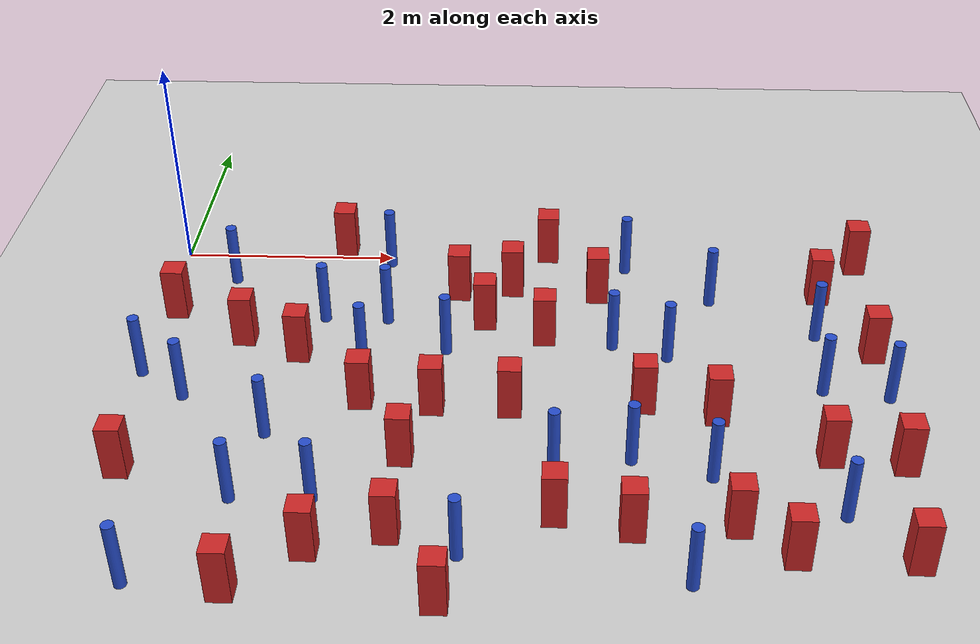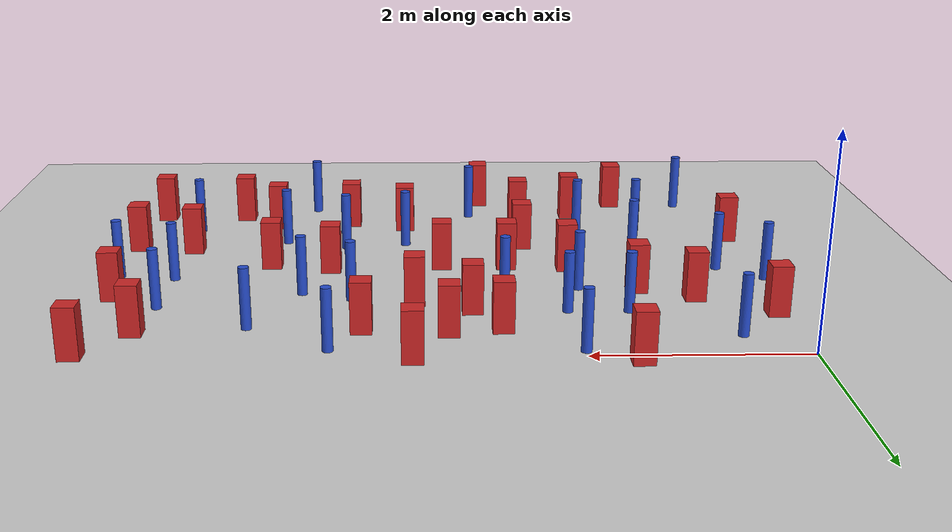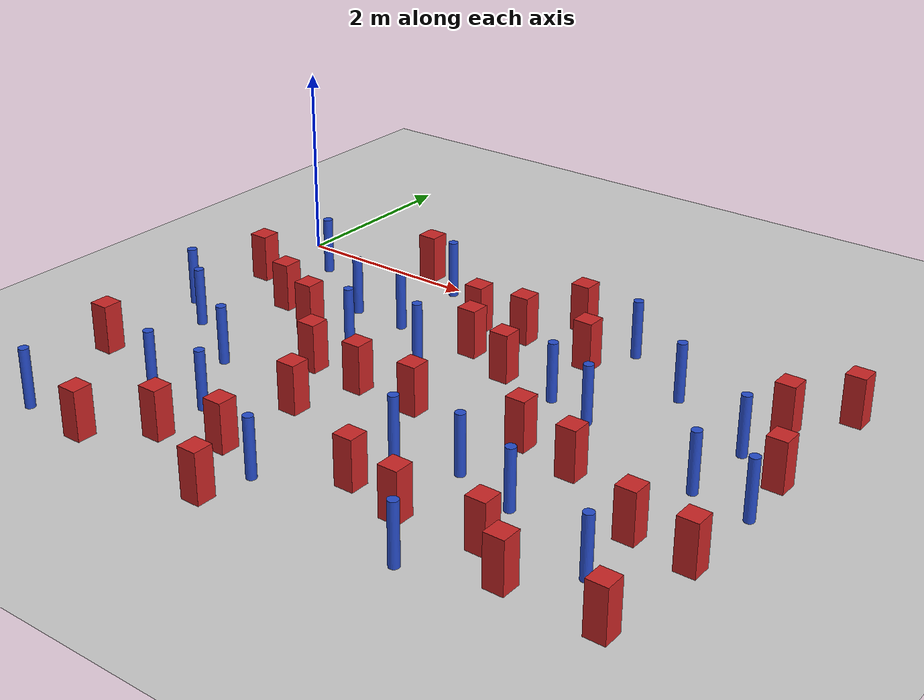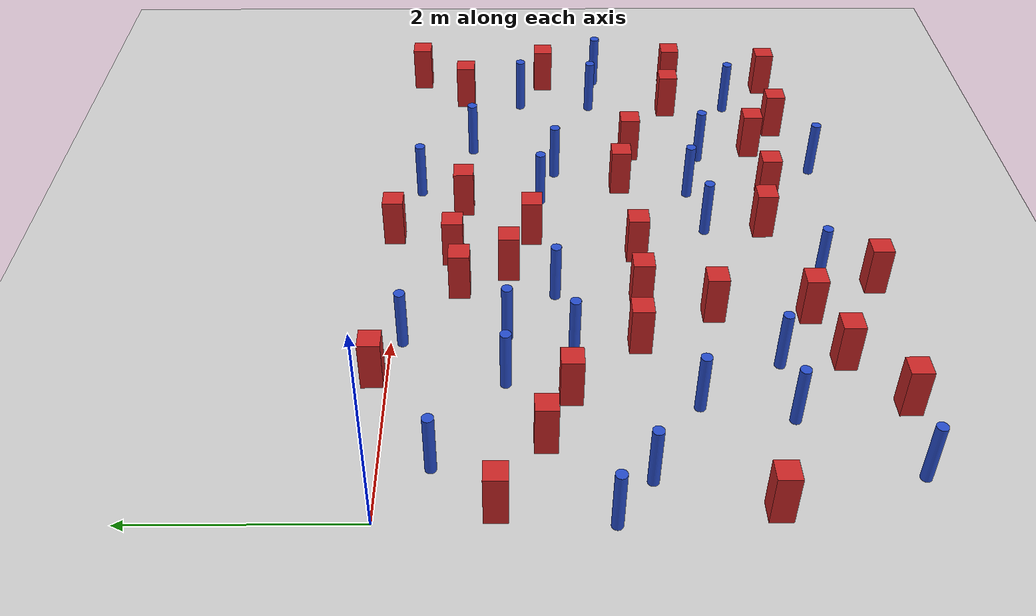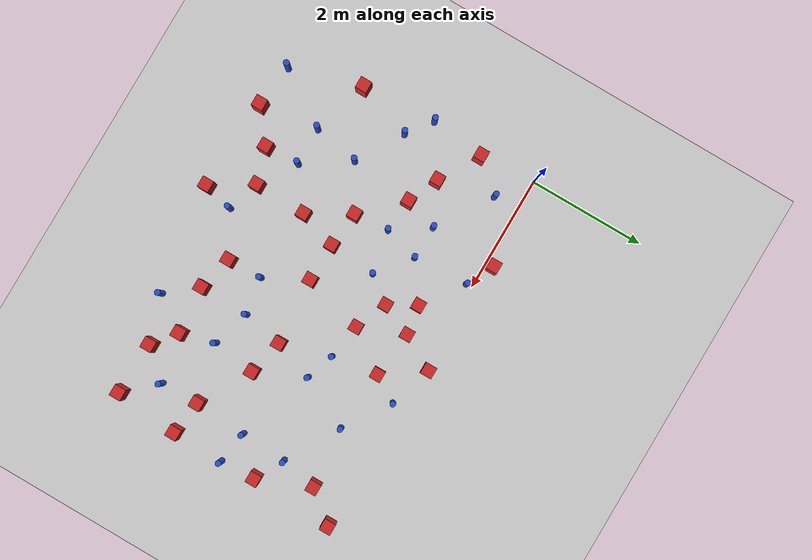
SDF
<sdf version="1.6">
 <world name="default">
  <model name="ground_plane">
   <static>1</static>
   <link name="link">
    <collision name="collision">
     <geometry><plane><normal>0 0 1</normal><size>100 100</size></plane></geometry>
     <surface><friction><ode><mu>100</mu><mu2>50</mu2></ode></friction></surface>
    </collision>
    <visual name="visual">
     <cast_shadows>0</cast_shadows>
     <geometry><plane><normal>0 0 1</normal><size>100 100</size></plane></geometry>
     <material>
      <ambient>1.0 1.0 1.0 1.0</ambient>
      <diffuse>0.8 0.8 0.8 1.0</diffuse>
      <specular>0.01 0.01 0.01 1.000000</specular>
     </material>
    </visual>
   </link>
  </model>
  <model name="NamedLocations">
   <static>true</static>
   <link name="DefaultStart"><pose>8.5 0 0 0 0 3.14</pose></link>
  </model>
  <model name="pole_obstacle1">
   <static>true</static>
   <pose>4.24833573397 -2.92627060806 2.88873142074e-08 -9.90536690245e-09 4.6021994898e-07 -1.20965994966e-07</pose>
   <link name="link">
    <pose>0 0 0.3 0 -0 0</pose>
    <inertial>
     <mass>1</mass>
     <inertia><ixx>0.145833</ixx><ixy>0</ixy><ixz>0</ixz><iyy>0.145833</iyy><iyz>0</iyz><izz>0.125</izz></inertia>
    </inertial>
    <collision name="collision">
     <geometry><cylinder><radius>0.05</radius><length>.6</length></cylinder></geometry>
    </collision>
    <visual name="visual">
     <geometry><cylinder><radius>0.05</radius><length>.6</length></cylinder></geometry>
     <material>
      <script><name>Gazebo/Blue</name><uri>file://media/materials/scripts/gazebo.material</uri></script>
     </material>
    </visual>
   </link>
  </model>
  <model name="square_post_obstacle1">
   <static>true</static>
   <pose>1.20547896843 -4.45564103918 8.22691968438e-08 7.2212513382e-06 -7.54495500217e-07 2.29674213826e-05</pose>
   <link name="link">
    <pose>0 0 0.25 0 -0 0</pose>
    <inertial>
     <mass>100</mass>
     <inertia>
      <ixx>0.166667</ixx>
      <ixy>0</ixy>
      <ixz>0</ixz>
      <iyy>0.166667</iyy>
      <iyz>0</iyz>
      <izz>0.166667</izz>
     </inertia>
    </inertial>
    <collision name="collision"><geometry><box><size>.2 .2 .5</size></box></geometry></collision>
    <visual name="visual">
     <geometry><box><size>.2 .2 .5</size></box></geometry>
     <material>
      <script><name>Gazebo/Red</name><uri>file://media/materials/scripts/gazebo.material</uri></script>
     </material>
    </visual>
   </link>
  </model>
  <model name="pole_obstacle10">
   <static>true</static>
   <pose>4.12650036827 -1.38472819704 2.88873142074e-08 -9.90536689445e-09 4.60219948999e-07 -1.20965994956e-07</pose>
   <link name="link">
    <pose>0 0 0.3 0 -0 0</pose>
    <inertial>
     <mass>1</mass>
     <inertia><ixx>0.145833</ixx><ixy>0</ixy><ixz>0</ixz><iyy>0.145833</iyy><iyz>0</iyz><izz>0.125</izz></inertia>
    </inertial>
    <collision name="collision">
     <geometry><cylinder><radius>0.05</radius><length>.6</length></cylinder></geometry>
    </collision>
    <visual name="visual">
     <geometry><cylinder><radius>0.05</radius><length>.6</length></cylinder></geometry>
     <material>
      <script><name>Gazebo/Blue</name><uri>file://media/materials/scripts/gazebo.material</uri></script>
     </material>
    </visual>
   </link>
  </model>
  <model name="pole_obstacle15">
   <static>true</static>
   <pose>4.61216319745 -1.54552737831 2.88873142074e-08 -9.90536689445e-09 4.60219948999e-07 -1.20965994956e-07</pose>
   <link name="link">
    <pose>0 0 0.3 0 -0 0</pose>
    <inertial>
     <mass>1</mass>
     <inertia><ixx>0.145833</ixx><ixy>0</ixy><ixz>0</ixz><iyy>0.145833</iyy><iyz>0</iyz><izz>0.125</izz></inertia>
    </inertial>
    <collision name="collision">
     <geometry><cylinder><radius>0.05</radius><length>.6</length></cylinder></geometry>
    </collision>
    <visual name="visual">
     <geometry><cylinder><radius>0.05</radius><length>.6</length></cylinder></geometry>
     <material>
      <script><name>Gazebo/Blue</name><uri>file://media/materials/scripts/gazebo.material</uri></script>
     </material>
    </visual>
   </link>
  </model>
  <model name="pole_obstacle22">
   <static>true</static>
   <pose>1.71378519307 -3.45411010123 2.88873142074e-08 -9.90536689791e-09 4.6021994899e-07 -1.20965994959e-07</pose>
   <link name="link">
    <pose>0 0 0.3 0 -0 0</pose>
    <inertial>
     <mass>1</mass>
     <inertia><ixx>0.145833</ixx><ixy>0</ixy><ixz>0</ixz><iyy>0.145833</iyy><iyz>0</iyz><izz>0.125</izz></inertia>
    </inertial>
    <collision name="collision">
     <geometry><cylinder><radius>0.05</radius><length>.6</length></cylinder></geometry>
    </collision>
    <visual name="visual">
     <geometry><cylinder><radius>0.05</radius><length>.6</length></cylinder></geometry>
     <material>
      <script><name>Gazebo/Blue</name><uri>file://media/materials/scripts/gazebo.material</uri></script>
     </material>
    </visual>
   </link>
  </model>
  <model name="square_post_obstacle20">
   <static>true</static>
   <pose>2.37018745026 -2.94971573956 8.22691968438e-08 7.2212513382e-06 -7.54495500217e-07 2.29674213826e-05</pose>
   <link name="link">
    <pose>0 0 0.25 0 -0 0</pose>
    <inertial>
     <mass>100</mass>
     <inertia>
      <ixx>0.166667</ixx>
      <ixy>0</ixy>
      <ixz>0</ixz>
      <iyy>0.166667</iyy>
      <iyz>0</iyz>
      <izz>0.166667</izz>
     </inertia>
    </inertial>
    <collision name="collision"><geometry><box><size>.2 .2 .5</size></box></geometry></collision>
    <visual name="visual">
     <geometry><box><size>.2 .2 .5</size></box></geometry>
     <material>
      <script><name>Gazebo/Red</name><uri>file://media/materials/scripts/gazebo.material</uri></script>
     </material>
    </visual>
   </link>
  </model>
  <model name="pole_obstacle29">
   <static>true</static>
   <pose>6.49619927924 -2.06322555982 2.88873142074e-08 -9.90536690245e-09 4.6021994898e-07 -1.20965994966e-07</pose>
   <link name="link">
    <pose>0 0 0.3 0 -0 0</pose>
    <inertial>
     <mass>1</mass>
     <inertia><ixx>0.145833</ixx><ixy>0</ixy><ixz>0</ixz><iyy>0.145833</iyy><iyz>0</iyz><izz>0.125</izz></inertia>
    </inertial>
    <collision name="collision">
     <geometry><cylinder><radius>0.05</radius><length>.6</length></cylinder></geometry>
    </collision>
    <visual name="visual">
     <geometry><cylinder><radius>0.05</radius><length>.6</length></cylinder></geometry>
     <material>
      <script><name>Gazebo/Blue</name><uri>file://media/materials/scripts/gazebo.material</uri></script>
     </material>
    </visual>
   </link>
  </model>
  <model name="square_post_obstacle23">
   <static>true</static>
   <pose>4.22750566799 -3.75409815203 8.22691968438e-08 7.2212513382e-06 -7.54495500217e-07 2.29674213826e-05</pose>
   <link name="link">
    <pose>0 0 0.25 0 -0 0</pose>
    <inertial>
     <mass>100</mass>
     <inertia>
      <ixx>0.166667</ixx>
      <ixy>0</ixy>
      <ixz>0</ixz>
      <iyy>0.166667</iyy>
      <iyz>0</iyz>
      <izz>0.166667</izz>
     </inertia>
    </inertial>
    <collision name="collision"><geometry><box><size>.2 .2 .5</size></box></geometry></collision>
    <visual name="visual">
     <geometry><box><size>.2 .2 .5</size></box></geometry>
     <material>
      <script><name>Gazebo/Red</name><uri>file://media/materials/scripts/gazebo.material</uri></script>
     </material>
    </visual>
   </link>
  </model>
  <model name="pole_obstacle42">
   <static>true</static>
   <pose>1.90044574133 -1.6433815035 2.88873142074e-08 -9.90536689672e-09 4.60219948993e-07 -1.20965994959e-07</pose>
   <link name="link">
    <pose>0 0 0.3 0 -0 0</pose>
    <inertial>
     <mass>1</mass>
     <inertia><ixx>0.145833</ixx><ixy>0</ixy><ixz>0</ixz><iyy>0.145833</iyy><iyz>0</iyz><izz>0.125</izz></inertia>
    </inertial>
    <collision name="collision">
     <geometry><cylinder><radius>0.05</radius><length>.6</length></cylinder></geometry>
    </collision>
    <visual name="visual">
     <geometry><cylinder><radius>0.05</radius><length>.6</length></cylinder></geometry>
     <material>
      <script><name>Gazebo/Blue</name><uri>file://media/materials/scripts/gazebo.material</uri></script>
     </material>
    </visual>
   </link>
  </model>
  <model name="square_post_obstacle32">
   <static>true</static>
   <pose>4.98477406157 -2.3625889347 8.22691968438e-08 7.2212513382e-06 -7.54495500217e-07 2.29674213826e-05</pose>
   <link name="link">
    <pose>0 0 0.25 0 -0 0</pose>
    <inertial>
     <mass>100</mass>
     <inertia>
      <ixx>0.166667</ixx>
      <ixy>0</ixy>
      <ixz>0</ixz>
      <iyy>0.166667</iyy>
      <iyz>0</iyz>
      <izz>0.166667</izz>
     </inertia>
    </inertial>
    <collision name="collision"><geometry><box><size>.2 .2 .5</size></box></geometry></collision>
    <visual name="visual">
     <geometry><box><size>.2 .2 .5</size></box></geometry>
     <material>
      <script><name>Gazebo/Red</name><uri>file://media/materials/scripts/gazebo.material</uri></script>
     </material>
    </visual>
   </link>
  </model>
  <model name="square_post_obstacle33">
   <static>true</static>
   <pose>2.77304114887 -4.52940186468 8.22691968438e-08 7.22125133819e-06 -7.54495500217e-07 2.29674213826e-05</pose>
   <link name="link">
    <pose>0 0 0.25 0 -0 0</pose>
    <inertial>
     <mass>100</mass>
     <inertia>
      <ixx>0.166667</ixx>
      <ixy>0</ixy>
      <ixz>0</ixz>
      <iyy>0.166667</iyy>
      <iyz>0</iyz>
      <izz>0.166667</izz>
     </inertia>
    </inertial>
    <collision name="collision"><geometry><box><size>.2 .2 .5</size></box></geometry></collision>
    <visual name="visual">
     <geometry><box><size>.2 .2 .5</size></box></geometry>
     <material>
      <script><name>Gazebo/Red</name><uri>file://media/materials/scripts/gazebo.material</uri></script>
     </material>
    </visual>
   </link>
  </model>
  <model name="pole_obstacle47">
   <static>true</static>
   <pose>5.05046700179 -0.671111797282 2.88873142074e-08 -9.90536689837e-09 4.60219948989e-07 -1.2096599496e-07</pose>
   <link name="link">
    <pose>0 0 0.3 0 -0 0</pose>
    <inertial>
     <mass>1</mass>
     <inertia><ixx>0.145833</ixx><ixy>0</ixy><ixz>0</ixz><iyy>0.145833</iyy><iyz>0</iyz><izz>0.125</izz></inertia>
    </inertial>
    <collision name="collision">
     <geometry><cylinder><radius>0.05</radius><length>.6</length></cylinder></geometry>
    </collision>
    <visual name="visual">
     <geometry><cylinder><radius>0.05</radius><length>.6</length></cylinder></geometry>
     <material>
      <script><name>Gazebo/Blue</name><uri>file://media/materials/scripts/gazebo.material</uri></script>
     </material>
    </visual>
   </link>
  </model>
  <model name="pole_obstacle59">
   <static>true</static>
   <pose>0.444974564538 -4.39592673974 2.88873142074e-08 -9.90536689683e-09 4.60219948993e-07 -1.20965994957e-07</pose>
   <link name="link">
    <pose>0 0 0.3 0 -0 0</pose>
    <inertial>
     <mass>1</mass>
     <inertia><ixx>0.145833</ixx><ixy>0</ixy><ixz>0</ixz><iyy>0.145833</iyy><iyz>0</iyz><izz>0.125</izz></inertia>
    </inertial>
    <collision name="collision">
     <geometry><cylinder><radius>0.05</radius><length>.6</length></cylinder></geometry>
    </collision>
    <visual name="visual">
     <geometry><cylinder><radius>0.05</radius><length>.6</length></cylinder></geometry>
     <material>
      <script><name>Gazebo/Blue</name><uri>file://media/materials/scripts/gazebo.material</uri></script>
     </material>
    </visual>
   </link>
  </model>
  <model name="square_post_obstacle46">
   <static>true</static>
   <pose>1.54921073364 0.12284174151 8.22691968438e-08 7.2212513382e-06 -7.54495500217e-07 2.29674213826e-05</pose>
   <link name="link">
    <pose>0 0 0.25 0 -0 0</pose>
    <inertial>
     <mass>100</mass>
     <inertia>
      <ixx>0.166667</ixx>
      <ixy>0</ixy>
      <ixz>0</ixz>
      <iyy>0.166667</iyy>
      <iyz>0</iyz>
      <izz>0.166667</izz>
     </inertia>
    </inertial>
    <collision name="collision"><geometry><box><size>.2 .2 .5</size></box></geometry></collision>
    <visual name="visual">
     <geometry><box><size>.2 .2 .5</size></box></geometry>
     <material>
      <script><name>Gazebo/Red</name><uri>file://media/materials/scripts/gazebo.material</uri></script>
     </material>
    </visual>
   </link>
  </model>
  <model name="square_post_obstacle48">
   <static>true</static>
   <pose>6.44008663165 -1.45887982451 8.22691968438e-08 7.2212513382e-06 -7.54495500217e-07 2.29674213826e-05</pose>
   <link name="link">
    <pose>0 0 0.25 0 -0 0</pose>
    <inertial>
     <mass>100</mass>
     <inertia>
      <ixx>0.166667</ixx>
      <ixy>0</ixy>
      <ixz>0</ixz>
      <iyy>0.166667</iyy>
      <iyz>0</iyz>
      <izz>0.166667</izz>
     </inertia>
    </inertial>
    <collision name="collision"><geometry><box><size>.2 .2 .5</size></box></geometry></collision>
    <visual name="visual">
     <geometry><box><size>.2 .2 .5</size></box></geometry>
     <material>
      <script><name>Gazebo/Red</name><uri>file://media/materials/scripts/gazebo.material</uri></script>
     </material>
    </visual>
   </link>
  </model>
  <model name="square_post_obstacle54">
   <static>true</static>
   <pose>3.51488883954 -1.28814952726 8.22691968438e-08 7.2212513382e-06 -7.54495500217e-07 2.29674213826e-05</pose>
   <link name="link">
    <pose>0 0 0.25 0 -0 0</pose>
    <inertial>
     <mass>100</mass>
     <inertia>
      <ixx>0.166667</ixx>
      <ixy>0</ixy>
      <ixz>0</ixz>
      <iyy>0.166667</iyy>
      <iyz>0</iyz>
      <izz>0.166667</izz>
     </inertia>
    </inertial>
    <collision name="collision"><geometry><box><size>.2 .2 .5</size></box></geometry></collision>
    <visual name="visual">
     <geometry><box><size>.2 .2 .5</size></box></geometry>
     <material>
      <script><name>Gazebo/Red</name><uri>file://media/materials/scripts/gazebo.material</uri></script>
     </material>
    </visual>
   </link>
  </model>
  <model name="square_post_obstacle62">
   <static>true</static>
   <pose>2.96860081308 -1.06024419381 8.22691968438e-08 7.2212513382e-06 -7.54495500217e-07 2.29674213826e-05</pose>
   <link name="link">
    <pose>0 0 0.25 0 -0 0</pose>
    <inertial>
     <mass>100</mass>
     <inertia>
      <ixx>0.166667</ixx>
      <ixy>0</ixy>
      <ixz>0</ixz>
      <iyy>0.166667</iyy>
      <iyz>0</iyz>
      <izz>0.166667</izz>
     </inertia>
    </inertial>
    <collision name="collision"><geometry><box><size>.2 .2 .5</size></box></geometry></collision>
    <visual name="visual">
     <geometry><box><size>.2 .2 .5</size></box></geometry>
     <material>
      <script><name>Gazebo/Red</name><uri>file://media/materials/scripts/gazebo.material</uri></script>
     </material>
    </visual>
   </link>
  </model>
  <model name="square_post_obstacle64">
   <static>true</static>
   <pose>5.86610958267 -2.8599877468 8.22691968438e-08 7.2212513382e-06 -7.54495500217e-07 2.29674213826e-05</pose>
   <link name="link">
    <pose>0 0 0.25 0 -0 0</pose>
    <inertial>
     <mass>100</mass>
     <inertia>
      <ixx>0.166667</ixx>
      <ixy>0</ixy>
      <ixz>0</ixz>
      <iyy>0.166667</iyy>
      <iyz>0</iyz>
      <izz>0.166667</izz>
     </inertia>
    </inertial>
    <collision name="collision"><geometry><box><size>.2 .2 .5</size></box></geometry></collision>
    <visual name="visual">
     <geometry><box><size>.2 .2 .5</size></box></geometry>
     <material>
      <script><name>Gazebo/Red</name><uri>file://media/materials/scripts/gazebo.material</uri></script>
     </material>
    </visual>
   </link>
  </model>
  <model name="pole_obstacle81">
   <static>true</static>
   <pose>1.06115362895 -3.46877572658 2.88873142074e-08 -9.90536689791e-09 4.6021994899e-07 -1.20965994959e-07</pose>
   <link name="link">
    <pose>0 0 0.3 0 -0 0</pose>
    <inertial>
     <mass>1</mass>
     <inertia><ixx>0.145833</ixx><ixy>0</ixy><ixz>0</ixz><iyy>0.145833</iyy><iyz>0</iyz><izz>0.125</izz></inertia>
    </inertial>
    <collision name="collision">
     <geometry><cylinder><radius>0.05</radius><length>.6</length></cylinder></geometry>
    </collision>
    <visual name="visual">
     <geometry><cylinder><radius>0.05</radius><length>.6</length></cylinder></geometry>
     <material>
      <script><name>Gazebo/Blue</name><uri>file://media/materials/scripts/gazebo.material</uri></script>
     </material>
    </visual>
   </link>
  </model>
  <model name="pole_obstacle85">
   <static>true</static>
   <pose>5.93170921405 -1.98072250784 2.88873142074e-08 -9.90536689117e-09 4.60219949006e-07 -1.20965994949e-07</pose>
   <link name="link">
    <pose>0 0 0.3 0 -0 0</pose>
    <inertial>
     <mass>1</mass>
     <inertia><ixx>0.145833</ixx><ixy>0</ixy><ixz>0</ixz><iyy>0.145833</iyy><iyz>0</iyz><izz>0.125</izz></inertia>
    </inertial>
    <collision name="collision">
     <geometry><cylinder><radius>0.05</radius><length>.6</length></cylinder></geometry>
    </collision>
    <visual name="visual">
     <geometry><cylinder><radius>0.05</radius><length>.6</length></cylinder></geometry>
     <material>
      <script><name>Gazebo/Blue</name><uri>file://media/materials/scripts/gazebo.material</uri></script>
     </material>
    </visual>
   </link>
  </model>
  <model name="pole_obstacle88">
   <static>true</static>
   <pose>4.65355884577 -4.28782236179 2.88873142074e-08 -9.90536690842e-09 4.60219948965e-07 -1.20965994976e-07</pose>
   <link name="link">
    <pose>0 0 0.3 0 -0 0</pose>
    <inertial>
     <mass>1</mass>
     <inertia><ixx>0.145833</ixx><ixy>0</ixy><ixz>0</ixz><iyy>0.145833</iyy><iyz>0</iyz><izz>0.125</izz></inertia>
    </inertial>
    <collision name="collision">
     <geometry><cylinder><radius>0.05</radius><length>.6</length></cylinder></geometry>
    </collision>
    <visual name="visual">
     <geometry><cylinder><radius>0.05</radius><length>.6</length></cylinder></geometry>
     <material>
      <script><name>Gazebo/Blue</name><uri>file://media/materials/scripts/gazebo.material</uri></script>
     </material>
    </visual>
   </link>
  </model>
  <model name="square_post_obstacle75">
   <static>true</static>
   <pose>2.57591666765 -2.29832830454 8.22691968438e-08 7.2212513382e-06 -7.54495500217e-07 2.29674213826e-05</pose>
   <link name="link">
    <pose>0 0 0.25 0 -0 0</pose>
    <inertial>
     <mass>100</mass>
     <inertia>
      <ixx>0.166667</ixx>
      <ixy>0</ixy>
      <ixz>0</ixz>
      <iyy>0.166667</iyy>
      <iyz>0</iyz>
      <izz>0.166667</izz>
     </inertia>
    </inertial>
    <collision name="collision"><geometry><box><size>.2 .2 .5</size></box></geometry></collision>
    <visual name="visual">
     <geometry><box><size>.2 .2 .5</size></box></geometry>
     <material>
      <script><name>Gazebo/Red</name><uri>file://media/materials/scripts/gazebo.material</uri></script>
     </material>
    </visual>
   </link>
  </model>
  <model name="square_post_obstacle79">
   <static>true</static>
   <pose>1.74859923506 -4.02586419914 8.22691968438e-08 7.2212513382e-06 -7.54495500217e-07 2.29674213826e-05</pose>
   <link name="link">
    <pose>0 0 0.25 0 -0 0</pose>
    <inertial>
     <mass>100</mass>
     <inertia>
      <ixx>0.166667</ixx>
      <ixy>0</ixy>
      <ixz>0</ixz>
      <iyy>0.166667</iyy>
      <iyz>0</iyz>
      <izz>0.166667</izz>
     </inertia>
    </inertial>
    <collision name="collision"><geometry><box><size>.2 .2 .5</size></box></geometry></collision>
    <visual name="visual">
     <geometry><box><size>.2 .2 .5</size></box></geometry>
     <material>
      <script><name>Gazebo/Red</name><uri>file://media/materials/scripts/gazebo.material</uri></script>
     </material>
    </visual>
   </link>
  </model>
  <model name="pole_obstacle96">
   <static>true</static>
   <pose>5.96921208756 -1.1934396779 2.88873142074e-08 -9.90536689445e-09 4.60219948999e-07 -1.20965994956e-07</pose>
   <link name="link">
    <pose>0 0 0.3 0 -0 0</pose>
    <inertial>
     <mass>1</mass>
     <inertia><ixx>0.145833</ixx><ixy>0</ixy><ixz>0</ixz><iyy>0.145833</iyy><iyz>0</iyz><izz>0.125</izz></inertia>
    </inertial>
    <collision name="collision">
     <geometry><cylinder><radius>0.05</radius><length>.6</length></cylinder></geometry>
    </collision>
    <visual name="visual">
     <geometry><cylinder><radius>0.05</radius><length>.6</length></cylinder></geometry>
     <material>
      <script><name>Gazebo/Blue</name><uri>file://media/materials/scripts/gazebo.material</uri></script>
     </material>
    </visual>
   </link>
  </model>
  <model name="square_post_obstacle95">
   <static>true</static>
   <pose>3.52809690828 0.0721381093843 8.22691968438e-08 7.2212513382e-06 -7.54495500217e-07 2.29674213826e-05</pose>
   <link name="link">
    <pose>0 0 0.25 0 -0 0</pose>
    <inertial>
     <mass>100</mass>
     <inertia>
      <ixx>0.166667</ixx>
      <ixy>0</ixy>
      <ixz>0</ixz>
      <iyy>0.166667</iyy>
      <iyz>0</iyz>
      <izz>0.166667</izz>
     </inertia>
    </inertial>
    <collision name="collision"><geometry><box><size>.2 .2 .5</size></box></geometry></collision>
    <visual name="visual">
     <geometry><box><size>.2 .2 .5</size></box></geometry>
     <material>
      <script><name>Gazebo/Red</name><uri>file://media/materials/scripts/gazebo.material</uri></script>
     </material>
    </visual>
   </link>
  </model>
  <model name="square_post_obstacle98">
   <static>true</static>
   <pose>1.96037896075 -2.23652137138 8.22691968438e-08 7.2212513382e-06 -7.54495500217e-07 2.29674213826e-05</pose>
   <link name="link">
    <pose>0 0 0.25 0 -0 0</pose>
    <inertial>
     <mass>100</mass>
     <inertia>
      <ixx>0.166667</ixx>
      <ixy>0</ixy>
      <ixz>0</ixz>
      <iyy>0.166667</iyy>
      <iyz>0</iyz>
      <izz>0.166667</izz>
     </inertia>
    </inertial>
    <collision name="collision"><geometry><box><size>.2 .2 .5</size></box></geometry></collision>
    <visual name="visual">
     <geometry><box><size>.2 .2 .5</size></box></geometry>
     <material>
      <script><name>Gazebo/Red</name><uri>file://media/materials/scripts/gazebo.material</uri></script>
     </material>
    </visual>
   </link>
  </model>
  <model name="square_post_obstacle102">
   <static>true</static>
   <pose>3.6273669325 -3.6080583678 8.22691968438e-08 7.2212513382e-06 -7.54495500217e-07 2.29674213826e-05</pose>
   <link name="link">
    <pose>0 0 0.25 0 -0 0</pose>
    <inertial>
     <mass>100</mass>
     <inertia>
      <ixx>0.166667</ixx>
      <ixy>0</ixy>
      <ixz>0</ixz>
      <iyy>0.166667</iyy>
      <iyz>0</iyz>
      <izz>0.166667</izz>
     </inertia>
    </inertial>
    <collision name="collision"><geometry><box><size>.2 .2 .5</size></box></geometry></collision>
    <visual name="visual">
     <geometry><box><size>.2 .2 .5</size></box></geometry>
     <material>
      <script><name>Gazebo/Red</name><uri>file://media/materials/scripts/gazebo.material</uri></script>
     </material>
    </visual>
   </link>
  </model>
  <model name="square_post_obstacle103">
   <static>true</static>
   <pose>0.108870677987 -0.962241690021 8.22691968438e-08 7.2212513382e-06 -7.54495500217e-07 2.29674213826e-05</pose>
   <link name="link">
    <pose>0 0 0.25 0 -0 0</pose>
    <inertial>
     <mass>100</mass>
     <inertia>
      <ixx>0.166667</ixx>
      <ixy>0</ixy>
      <ixz>0</ixz>
      <iyy>0.166667</iyy>
      <iyz>0</iyz>
      <izz>0.166667</izz>
     </inertia>
    </inertial>
    <collision name="collision"><geometry><box><size>.2 .2 .5</size></box></geometry></collision>
    <visual name="visual">
     <geometry><box><size>.2 .2 .5</size></box></geometry>
     <material>
      <script><name>Gazebo/Red</name><uri>file://media/materials/scripts/gazebo.material</uri></script>
     </material>
    </visual>
   </link>
  </model>
  <model name="square_post_obstacle106">
   <static>true</static>
   <pose>1.33175468599 -1.59498167407 8.22691968438e-08 7.2212513382e-06 -7.54495500217e-07 2.29674213826e-05</pose>
   <link name="link">
    <pose>0 0 0.25 0 -0 0</pose>
    <inertial>
     <mass>100</mass>
     <inertia>
      <ixx>0.166667</ixx>
      <ixy>0</ixy>
      <ixz>0</ixz>
      <iyy>0.166667</iyy>
      <iyz>0</iyz>
      <izz>0.166667</izz>
     </inertia>
    </inertial>
    <collision name="collision"><geometry><box><size>.2 .2 .5</size></box></geometry></collision>
    <visual name="visual">
     <geometry><box><size>.2 .2 .5</size></box></geometry>
     <material>
      <script><name>Gazebo/Red</name><uri>file://media/materials/scripts/gazebo.material</uri></script>
     </material>
    </visual>
   </link>
  </model>
  <model name="square_post_obstacle117">
   <static>true</static>
   <pose>0.806773525741 -1.36654385746 8.22691968438e-08 7.2212513382e-06 -7.54495500217e-07 2.29674213826e-05</pose>
   <link name="link">
    <pose>0 0 0.25 0 -0 0</pose>
    <inertial>
     <mass>100</mass>
     <inertia>
      <ixx>0.166667</ixx>
      <ixy>0</ixy>
      <ixz>0</ixz>
      <iyy>0.166667</iyy>
      <iyz>0</iyz>
      <izz>0.166667</izz>
     </inertia>
    </inertial>
    <collision name="collision"><geometry><box><size>.2 .2 .5</size></box></geometry></collision>
    <visual name="visual">
     <geometry><box><size>.2 .2 .5</size></box></geometry>
     <material>
      <script><name>Gazebo/Red</name><uri>file://media/materials/scripts/gazebo.material</uri></script>
     </material>
    </visual>
   </link>
  </model>
  <model name="square_post_obstacle129">
   <static>true</static>
   <pose>6.35552105903 -4.02912863301 8.22691968438e-08 7.2212513382e-06 -7.54495500217e-07 2.29674213826e-05</pose>
   <link name="link">
    <pose>0 0 0.25 0 -0 0</pose>
    <inertial>
     <mass>100</mass>
     <inertia>
      <ixx>0.166667</ixx>
      <ixy>0</ixy>
      <ixz>0</ixz>
      <iyy>0.166667</iyy>
      <iyz>0</iyz>
      <izz>0.166667</izz>
     </inertia>
    </inertial>
    <collision name="collision"><geometry><box><size>.2 .2 .5</size></box></geometry></collision>
    <visual name="visual">
     <geometry><box><size>.2 .2 .5</size></box></geometry>
     <material>
      <script><name>Gazebo/Red</name><uri>file://media/materials/scripts/gazebo.material</uri></script>
     </material>
    </visual>
   </link>
  </model>
  <model name="square_post_obstacle131">
   <static>true</static>
   <pose>3.20251728604 -0.519228888866 8.22691968438e-08 7.2212513382e-06 -7.54495500217e-07 2.29674213826e-05</pose>
   <link name="link">
    <pose>0 0 0.25 0 -0 0</pose>
    <inertial>
     <mass>100</mass>
     <inertia>
      <ixx>0.166667</ixx>
      <ixy>0</ixy>
      <ixz>0</ixz>
      <iyy>0.166667</iyy>
      <iyz>0</iyz>
      <izz>0.166667</izz>
     </inertia>
    </inertial>
    <collision name="collision"><geometry><box><size>.2 .2 .5</size></box></geometry></collision>
    <visual name="visual">
     <geometry><box><size>.2 .2 .5</size></box></geometry>
     <material>
      <script><name>Gazebo/Red</name><uri>file://media/materials/scripts/gazebo.material</uri></script>
     </material>
    </visual>
   </link>
  </model>
  <model name="pole_obstacle137">
   <static>true</static>
   <pose>4.89565062916 -3.1161806086 2.88873142074e-08 -9.90536690245e-09 4.6021994898e-07 -1.20965994966e-07</pose>
   <link name="link">
    <pose>0 0 0.3 0 -0 0</pose>
    <inertial>
     <mass>1</mass>
     <inertia><ixx>0.145833</ixx><ixy>0</ixy><ixz>0</ixz><iyy>0.145833</iyy><iyz>0</iyz><izz>0.125</izz></inertia>
    </inertial>
    <collision name="collision">
     <geometry><cylinder><radius>0.05</radius><length>.6</length></cylinder></geometry>
    </collision>
    <visual name="visual">
     <geometry><cylinder><radius>0.05</radius><length>.6</length></cylinder></geometry>
     <material>
      <script><name>Gazebo/Blue</name><uri>file://media/materials/scripts/gazebo.material</uri></script>
     </material>
    </visual>
   </link>
  </model>
  <model name="square_post_obstacle134">
   <static>true</static>
   <pose>4.37108811957 -2.2245029564 8.22691968438e-08 7.2212513382e-06 -7.54495500217e-07 2.29674213826e-05</pose>
   <link name="link">
    <pose>0 0 0.25 0 -0 0</pose>
    <inertial>
     <mass>100</mass>
     <inertia>
      <ixx>0.166667</ixx>
      <ixy>0</ixy>
      <ixz>0</ixz>
      <iyy>0.166667</iyy>
      <iyz>0</iyz>
      <izz>0.166667</izz>
     </inertia>
    </inertial>
    <collision name="collision"><geometry><box><size>.2 .2 .5</size></box></geometry></collision>
    <visual name="visual">
     <geometry><box><size>.2 .2 .5</size></box></geometry>
     <material>
      <script><name>Gazebo/Red</name><uri>file://media/materials/scripts/gazebo.material</uri></script>
     </material>
    </visual>
   </link>
  </model>
  <model name="pole_obstacle142">
   <static>true</static>
   <pose>2.89821067754 -4.04006333995 2.88873142074e-08 -9.90536690007e-09 4.60219948985e-07 -1.20965994963e-07</pose>
   <link name="link">
    <pose>0 0 0.3 0 -0 0</pose>
    <inertial>
     <mass>1</mass>
     <inertia><ixx>0.145833</ixx><ixy>0</ixy><ixz>0</ixz><iyy>0.145833</iyy><iyz>0</iyz><izz>0.125</izz></inertia>
    </inertial>
    <collision name="collision">
     <geometry><cylinder><radius>0.05</radius><length>.6</length></cylinder></geometry>
    </collision>
    <visual name="visual">
     <geometry><cylinder><radius>0.05</radius><length>.6</length></cylinder></geometry>
     <material>
      <script><name>Gazebo/Blue</name><uri>file://media/materials/scripts/gazebo.material</uri></script>
     </material>
    </visual>
   </link>
  </model>
  <model name="square_post_obstacle142">
   <static>true</static>
   <pose>6.0710020743 -0.568122301832 8.22691968438e-08 7.2212513382e-06 -7.54495500217e-07 2.29674213826e-05</pose>
   <link name="link">
    <pose>0 0 0.25 0 -0 0</pose>
    <inertial>
     <mass>100</mass>
     <inertia>
      <ixx>0.166667</ixx>
      <ixy>0</ixy>
      <ixz>0</ixz>
      <iyy>0.166667</iyy>
      <iyz>0</iyz>
      <izz>0.166667</izz>
     </inertia>
    </inertial>
    <collision name="collision"><geometry><box><size>.2 .2 .5</size></box></geometry></collision>
    <visual name="visual">
     <geometry><box><size>.2 .2 .5</size></box></geometry>
     <material>
      <script><name>Gazebo/Red</name><uri>file://media/materials/scripts/gazebo.material</uri></script>
     </material>
    </visual>
   </link>
  </model>
  <model name="square_post_obstacle144">
   <static>true</static>
   <pose>6.49143531899 -0.0513427130231 8.22691968438e-08 7.2212513382e-06 -7.54495500217e-07 2.29674213826e-05</pose>
   <link name="link">
    <pose>0 0 0.25 0 -0 0</pose>
    <inertial>
     <mass>100</mass>
     <inertia>
      <ixx>0.166667</ixx>
      <ixy>0</ixy>
      <ixz>0</ixz>
      <iyy>0.166667</iyy>
      <iyz>0</iyz>
      <izz>0.166667</izz>
     </inertia>
    </inertial>
    <collision name="collision"><geometry><box><size>.2 .2 .5</size></box></geometry></collision>
    <visual name="visual">
     <geometry><box><size>.2 .2 .5</size></box></geometry>
     <material>
      <script><name>Gazebo/Red</name><uri>file://media/materials/scripts/gazebo.material</uri></script>
     </material>
    </visual>
   </link>
  </model>
  <model name="pole_obstacle151">
   <static>true</static>
   <pose>-0.0117889989809 -1.89538195331 2.88873142074e-08 -9.90536689885e-09 4.60219948988e-07 -1.20965994962e-07</pose>
   <link name="link">
    <pose>0 0 0.3 0 -0 0</pose>
    <inertial>
     <mass>1</mass>
     <inertia><ixx>0.145833</ixx><ixy>0</ixy><ixz>0</ixz><iyy>0.145833</iyy><iyz>0</iyz><izz>0.125</izz></inertia>
    </inertial>
    <collision name="collision">
     <geometry><cylinder><radius>0.05</radius><length>.6</length></cylinder></geometry>
    </collision>
    <visual name="visual">
     <geometry><cylinder><radius>0.05</radius><length>.6</length></cylinder></geometry>
     <material>
      <script><name>Gazebo/Blue</name><uri>file://media/materials/scripts/gazebo.material</uri></script>
     </material>
    </visual>
   </link>
  </model>
  <model name="square_post_obstacle147">
   <static>true</static>
   <pose>2.70693714277 -0.598664352134 8.22691968438e-08 7.2212513382e-06 -7.54495500217e-07 2.29674213826e-05</pose>
   <link name="link">
    <pose>0 0 0.25 0 -0 0</pose>
    <inertial>
     <mass>100</mass>
     <inertia>
      <ixx>0.166667</ixx>
      <ixy>0</ixy>
      <ixz>0</ixz>
      <iyy>0.166667</iyy>
      <iyz>0</iyz>
      <izz>0.166667</izz>
     </inertia>
    </inertial>
    <collision name="collision"><geometry><box><size>.2 .2 .5</size></box></geometry></collision>
    <visual name="visual">
     <geometry><box><size>.2 .2 .5</size></box></geometry>
     <material>
      <script><name>Gazebo/Red</name><uri>file://media/materials/scripts/gazebo.material</uri></script>
     </material>
    </visual>
   </link>
  </model>
  <model name="pole_obstacle158">
   <static>true</static>
   <pose>0.548516066666 -0.432709323877 2.88873142074e-08 -9.90536689651e-09 4.60219948994e-07 -1.20965994957e-07</pose>
   <link name="link">
    <pose>0 0 0.3 0 -0 0</pose>
    <inertial>
     <mass>1</mass>
     <inertia><ixx>0.145833</ixx><ixy>0</ixy><ixz>0</ixz><iyy>0.145833</iyy><iyz>0</iyz><izz>0.125</izz></inertia>
    </inertial>
    <collision name="collision">
     <geometry><cylinder><radius>0.05</radius><length>.6</length></cylinder></geometry>
    </collision>
    <visual name="visual">
     <geometry><cylinder><radius>0.05</radius><length>.6</length></cylinder></geometry>
     <material>
      <script><name>Gazebo/Blue</name><uri>file://media/materials/scripts/gazebo.material</uri></script>
     </material>
    </visual>
   </link>
  </model>
  <model name="pole_obstacle159">
   <static>true</static>
   <pose>0.413307700355 -2.21122590484 2.88873142074e-08 -9.90536689663e-09 4.60219948993e-07 -1.20965994959e-07</pose>
   <link name="link">
    <pose>0 0 0.3 0 -0 0</pose>
    <inertial>
     <mass>1</mass>
     <inertia><ixx>0.145833</ixx><ixy>0</ixy><ixz>0</ixz><iyy>0.145833</iyy><iyz>0</iyz><izz>0.125</izz></inertia>
    </inertial>
    <collision name="collision">
     <geometry><cylinder><radius>0.05</radius><length>.6</length></cylinder></geometry>
    </collision>
    <visual name="visual">
     <geometry><cylinder><radius>0.05</radius><length>.6</length></cylinder></geometry>
     <material>
      <script><name>Gazebo/Blue</name><uri>file://media/materials/scripts/gazebo.material</uri></script>
     </material>
    </visual>
   </link>
  </model>
  <model name="pole_obstacle162">
   <static>true</static>
   <pose>4.27534587502 -0.15254516013 2.88873142074e-08 -9.90536689223e-09 4.60219949004e-07 -1.20965994952e-07</pose>
   <link name="link">
    <pose>0 0 0.3 0 -0 0</pose>
    <inertial>
     <mass>1</mass>
     <inertia><ixx>0.145833</ixx><ixy>0</ixy><ixz>0</ixz><iyy>0.145833</iyy><iyz>0</iyz><izz>0.125</izz></inertia>
    </inertial>
    <collision name="collision">
     <geometry><cylinder><radius>0.05</radius><length>.6</length></cylinder></geometry>
    </collision>
    <visual name="visual">
     <geometry><cylinder><radius>0.05</radius><length>.6</length></cylinder></geometry>
     <material>
      <script><name>Gazebo/Blue</name><uri>file://media/materials/scripts/gazebo.material</uri></script>
     </material>
    </visual>
   </link>
  </model>
  <model name="pole_obstacle168">
   <static>true</static>
   <pose>2.00709156674 -0.106078281144 2.88873142074e-08 -9.90536689607e-09 4.60219948995e-07 -1.20965994957e-07</pose>
   <link name="link">
    <pose>0 0 0.3 0 -0 0</pose>
    <inertial>
     <mass>1</mass>
     <inertia><ixx>0.145833</ixx><ixy>0</ixy><ixz>0</ixz><iyy>0.145833</iyy><iyz>0</iyz><izz>0.125</izz></inertia>
    </inertial>
    <collision name="collision">
     <geometry><cylinder><radius>0.05</radius><length>.6</length></cylinder></geometry>
    </collision>
    <visual name="visual">
     <geometry><cylinder><radius>0.05</radius><length>.6</length></cylinder></geometry>
     <material>
      <script><name>Gazebo/Blue</name><uri>file://media/materials/scripts/gazebo.material</uri></script>
     </material>
    </visual>
   </link>
  </model>
  <model name="square_post_obstacle166">
   <static>true</static>
   <pose>0.107272809288 -3.16150724422 8.22691968438e-08 7.2212513382e-06 -7.54495500217e-07 2.29674213826e-05</pose>
   <link name="link">
    <pose>0 0 0.25 0 -0 0</pose>
    <inertial>
     <mass>100</mass>
     <inertia>
      <ixx>0.166667</ixx>
      <ixy>0</ixy>
      <ixz>0</ixz>
      <iyy>0.166667</iyy>
      <iyz>0</iyz>
      <izz>0.166667</izz>
     </inertia>
    </inertial>
    <collision name="collision"><geometry><box><size>.2 .2 .5</size></box></geometry></collision>
    <visual name="visual">
     <geometry><box><size>.2 .2 .5</size></box></geometry>
     <material>
      <script><name>Gazebo/Red</name><uri>file://media/materials/scripts/gazebo.material</uri></script>
     </material>
    </visual>
   </link>
  </model>
  <model name="square_post_obstacle171">
   <static>true</static>
   <pose>6.45738288261 -2.94033213246 8.22691968438e-08 7.2212513382e-06 -7.54495500217e-07 2.29674213826e-05</pose>
   <link name="link">
    <pose>0 0 0.25 0 -0 0</pose>
    <inertial>
     <mass>100</mass>
     <inertia>
      <ixx>0.166667</ixx>
      <ixy>0</ixy>
      <ixz>0</ixz>
      <iyy>0.166667</iyy>
      <iyz>0</iyz>
      <izz>0.166667</izz>
     </inertia>
    </inertial>
    <collision name="collision"><geometry><box><size>.2 .2 .5</size></box></geometry></collision>
    <visual name="visual">
     <geometry><box><size>.2 .2 .5</size></box></geometry>
     <material>
      <script><name>Gazebo/Red</name><uri>file://media/materials/scripts/gazebo.material</uri></script>
     </material>
    </visual>
   </link>
  </model>
  <model name="pole_obstacle173">
   <static>true</static>
   <pose>3.61589863886 -3.03155679515 2.88873142074e-08 -9.90536690232e-09 4.6021994898e-07 -1.20965994968e-07</pose>
   <link name="link">
    <pose>0 0 0.3 0 -0 0</pose>
    <inertial>
     <mass>1</mass>
     <inertia><ixx>0.145833</ixx><ixy>0</ixy><ixz>0</ixz><iyy>0.145833</iyy><iyz>0</iyz><izz>0.125</izz></inertia>
    </inertial>
    <collision name="collision">
     <geometry><cylinder><radius>0.05</radius><length>.6</length></cylinder></geometry>
    </collision>
    <visual name="visual">
     <geometry><cylinder><radius>0.05</radius><length>.6</length></cylinder></geometry>
     <material>
      <script><name>Gazebo/Blue</name><uri>file://media/materials/scripts/gazebo.material</uri></script>
     </material>
    </visual>
   </link>
  </model>
  <model name="pole_obstacle179">
   <static>true</static>
   <pose>2.06809408697 -1.04511013486 2.88873142074e-08 -9.90536689461e-09 4.60219948998e-07 -1.20965994957e-07</pose>
   <link name="link">
    <pose>0 0 0.3 0 -0 0</pose>
    <inertial>
     <mass>1</mass>
     <inertia><ixx>0.145833</ixx><ixy>0</ixy><ixz>0</ixz><iyy>0.145833</iyy><iyz>0</iyz><izz>0.125</izz></inertia>
    </inertial>
    <collision name="collision">
     <geometry><cylinder><radius>0.05</radius><length>.6</length></cylinder></geometry>
    </collision>
    <visual name="visual">
     <geometry><cylinder><radius>0.05</radius><length>.6</length></cylinder></geometry>
     <material>
      <script><name>Gazebo/Blue</name><uri>file://media/materials/scripts/gazebo.material</uri></script>
     </material>
    </visual>
   </link>
  </model>
  <model name="square_post_obstacle185">
   <static>true</static>
   <pose>5.04501116613 -3.68784409889 8.22691968438e-08 7.2212513382e-06 -7.54495500217e-07 2.29674213826e-05</pose>
   <link name="link">
    <pose>0 0 0.25 0 -0 0</pose>
    <inertial>
     <mass>100</mass>
     <inertia>
      <ixx>0.166667</ixx>
      <ixy>0</ixy>
      <ixz>0</ixz>
      <iyy>0.166667</iyy>
      <iyz>0</iyz>
      <izz>0.166667</izz>
     </inertia>
    </inertial>
    <collision name="collision"><geometry><box><size>.2 .2 .5</size></box></geometry></collision>
    <visual name="visual">
     <geometry><box><size>.2 .2 .5</size></box></geometry>
     <material>
      <script><name>Gazebo/Red</name><uri>file://media/materials/scripts/gazebo.material</uri></script>
     </material>
    </visual>
   </link>
  </model>
  <model name="square_post_obstacle187">
   <static>true</static>
   <pose>3.23814959357 -2.30974742785 8.22691968438e-08 7.2212513382e-06 -7.54495500217e-07 2.29674213826e-05</pose>
   <link name="link">
    <pose>0 0 0.25 0 -0 0</pose>
    <inertial>
     <mass>100</mass>
     <inertia>
      <ixx>0.166667</ixx>
      <ixy>0</ixy>
      <ixz>0</ixz>
      <iyy>0.166667</iyy>
      <iyz>0</iyz>
      <izz>0.166667</izz>
     </inertia>
    </inertial>
    <collision name="collision"><geometry><box><size>.2 .2 .5</size></box></geometry></collision>
    <visual name="visual">
     <geometry><box><size>.2 .2 .5</size></box></geometry>
     <material>
      <script><name>Gazebo/Red</name><uri>file://media/materials/scripts/gazebo.material</uri></script>
     </material>
    </visual>
   </link>
  </model>
  <model name="square_post_obstacle193">
   <static>true</static>
   <pose>5.44756498889 -4.00383450639 8.22691968438e-08 7.2212513382e-06 -7.54495500217e-07 2.29674213826e-05</pose>
   <link name="link">
    <pose>0 0 0.25 0 -0 0</pose>
    <inertial>
     <mass>100</mass>
     <inertia>
      <ixx>0.166667</ixx>
      <ixy>0</ixy>
      <ixz>0</ixz>
      <iyy>0.166667</iyy>
      <iyz>0</iyz>
      <izz>0.166667</izz>
     </inertia>
    </inertial>
    <collision name="collision"><geometry><box><size>.2 .2 .5</size></box></geometry></collision>
    <visual name="visual">
     <geometry><box><size>.2 .2 .5</size></box></geometry>
     <material>
      <script><name>Gazebo/Red</name><uri>file://media/materials/scripts/gazebo.material</uri></script>
     </material>
    </visual>
   </link>
  </model>
  <model name="square_post_obstacle207">
   <static>true</static>
   <pose>3.99811487034 -0.604110002347 8.22691968438e-08 7.2212513382e-06 -7.54495500217e-07 2.29674213826e-05</pose>
   <link name="link">
    <pose>0 0 0.25 0 -0 0</pose>
    <inertial>
     <mass>100</mass>
     <inertia>
      <ixx>0.166667</ixx>
      <ixy>0</ixy>
      <ixz>0</ixz>
      <iyy>0.166667</iyy>
      <iyz>0</iyz>
      <izz>0.166667</izz>
     </inertia>
    </inertial>
    <collision name="collision"><geometry><box><size>.2 .2 .5</size></box></geometry></collision>
    <visual name="visual">
     <geometry><box><size>.2 .2 .5</size></box></geometry>
     <material>
      <script><name>Gazebo/Red</name><uri>file://media/materials/scripts/gazebo.material</uri></script>
     </material>
    </visual>
   </link>
  </model>
  <model name="pole_obstacle201">
   <static>true</static>
   <pose>5.90111594038 -3.53331571163 2.88873142074e-08 -9.90536690245e-09 4.6021994898e-07 -1.20965994966e-07</pose>
   <link name="link">
    <pose>0 0 0.3 0 -0 0</pose>
    <inertial>
     <mass>1</mass>
     <inertia><ixx>0.145833</ixx><ixy>0</ixy><ixz>0</ixz><iyy>0.145833</iyy><iyz>0</iyz><izz>0.125</izz></inertia>
    </inertial>
    <collision name="collision">
     <geometry><cylinder><radius>0.05</radius><length>.6</length></cylinder></geometry>
    </collision>
    <visual name="visual">
     <geometry><cylinder><radius>0.05</radius><length>.6</length></cylinder></geometry>
     <material>
      <script><name>Gazebo/Blue</name><uri>file://media/materials/scripts/gazebo.material</uri></script>
     </material>
    </visual>
   </link>
  </model>
  <model name="pole_obstacle202">
   <static>true</static>
   <pose>1.48923388387 -1.03478332835 2.88873142074e-08 -9.90536689704e-09 4.60219948992e-07 -1.20965994957e-07</pose>
   <link name="link">
    <pose>0 0 0.3 0 -0 0</pose>
    <inertial>
     <mass>1</mass>
     <inertia><ixx>0.145833</ixx><ixy>0</ixy><ixz>0</ixz><iyy>0.145833</iyy><iyz>0</iyz><izz>0.125</izz></inertia>
    </inertial>
    <collision name="collision">
     <geometry><cylinder><radius>0.05</radius><length>.6</length></cylinder></geometry>
    </collision>
    <visual name="visual">
     <geometry><cylinder><radius>0.05</radius><length>.6</length></cylinder></geometry>
     <material>
      <script><name>Gazebo/Blue</name><uri>file://media/materials/scripts/gazebo.material</uri></script>
     </material>
    </visual>
   </link>
  </model>
  <model name="pole_obstacle206">
   <static>true</static>
   <pose>1.20746408551 -2.68512087456 2.88873142074e-08 -9.90536689791e-09 4.6021994899e-07 -1.20965994959e-07</pose>
   <link name="link">
    <pose>0 0 0.3 0 -0 0</pose>
    <inertial>
     <mass>1</mass>
     <inertia><ixx>0.145833</ixx><ixy>0</ixy><ixz>0</ixz><iyy>0.145833</iyy><iyz>0</iyz><izz>0.125</izz></inertia>
    </inertial>
    <collision name="collision">
     <geometry><cylinder><radius>0.05</radius><length>.6</length></cylinder></geometry>
    </collision>
    <visual name="visual">
     <geometry><cylinder><radius>0.05</radius><length>.6</length></cylinder></geometry>
     <material>
      <script><name>Gazebo/Blue</name><uri>file://media/materials/scripts/gazebo.material</uri></script>
     </material>
    </visual>
   </link>
  </model>
  <model name="square_post_obstacle222">
   <static>true</static>
   <pose>2.34997355705 -3.83610873169 8.22691968438e-08 7.2212513382e-06 -7.54495500217e-07 2.29674213826e-05</pose>
   <link name="link">
    <pose>0 0 0.25 0 -0 0</pose>
    <inertial>
     <mass>100</mass>
     <inertia>
      <ixx>0.166667</ixx>
      <ixy>0</ixy>
      <ixz>0</ixz>
      <iyy>0.166667</iyy>
      <iyz>0</iyz>
      <izz>0.166667</izz>
     </inertia>
    </inertial>
    <collision name="collision"><geometry><box><size>.2 .2 .5</size></box></geometry></collision>
    <visual name="visual">
     <geometry><box><size>.2 .2 .5</size></box></geometry>
     <material>
      <script><name>Gazebo/Red</name><uri>file://media/materials/scripts/gazebo.material</uri></script>
     </material>
    </visual>
   </link>
  </model>
  <model name="pole_obstacle211">
   <static>true</static>
   <pose>2.63850000913 -1.49665997959 2.88873142074e-08 -9.90536691151e-09 4.60219948958e-07 -1.20965994982e-07</pose>
   <link name="link">
    <pose>0 0 0.3 0 -0 0</pose>
    <inertial>
     <mass>1</mass>
     <inertia><ixx>0.145833</ixx><ixy>0</ixy><ixz>0</ixz><iyy>0.145833</iyy><iyz>0</iyz><izz>0.125</izz></inertia>
    </inertial>
    <collision name="collision">
     <geometry><cylinder><radius>0.05</radius><length>.6</length></cylinder></geometry>
    </collision>
    <visual name="visual">
     <geometry><cylinder><radius>0.05</radius><length>.6</length></cylinder></geometry>
     <material>
      <script><name>Gazebo/Blue</name><uri>file://media/materials/scripts/gazebo.material</uri></script>
     </material>
    </visual>
   </link>
  </model>
 </world>
</sdf>
